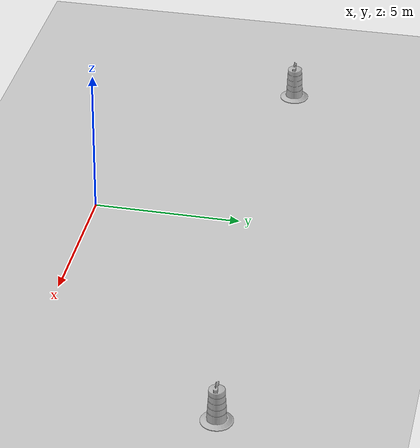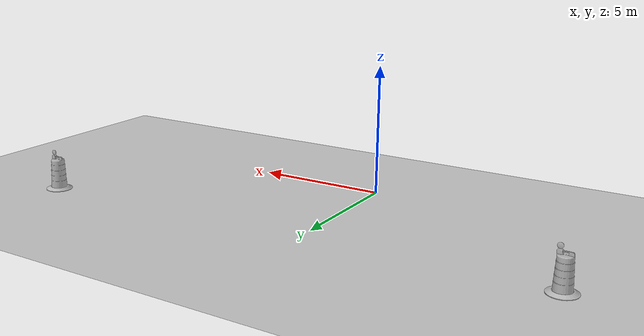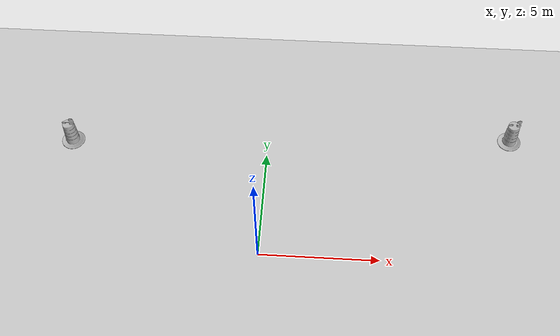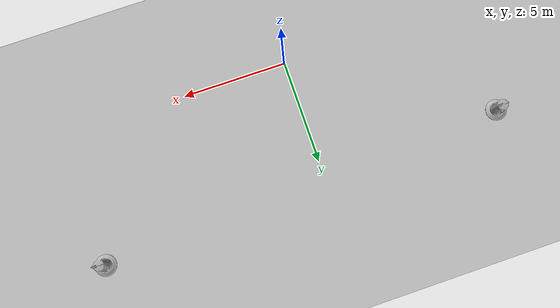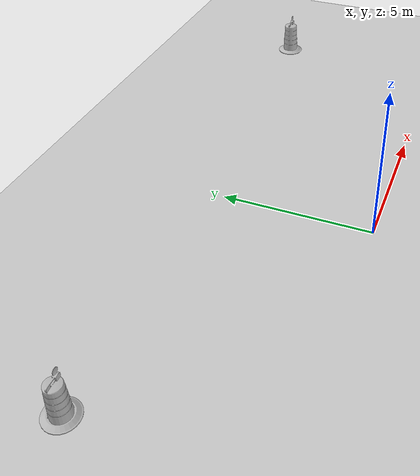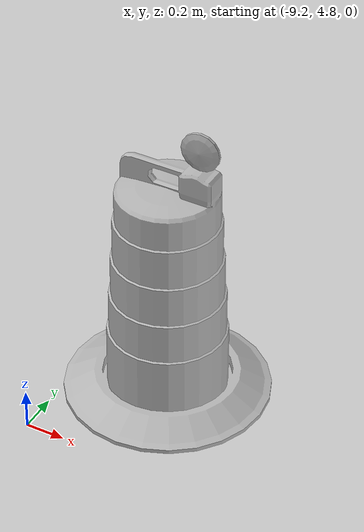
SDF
<sdf version='1.7'>
  <world name='default'>

    <light name='sun' type='directional'>
      <cast_shadows>1</cast_shadows>
      <pose>0 0 10 0 -0 0</pose>
      <diffuse>0.8 0.8 0.8 1</diffuse>
      <specular>0.2 0.2 0.2 1</specular>
      <direction>-0.5 0.1 -0.9</direction>
    </light>

    <physics type='ode'>
      <max_step_size>0.001</max_step_size>
      <real_time_factor>1</real_time_factor>
      <real_time_update_rate>1000</real_time_update_rate>
    </physics>

    <model name='ground_plane'>
      <static>true</static>
      <link name='link'>
        <collision name='collision'>
          <geometry>
            <plane>
              <normal>0 0 1</normal>
              <size>100 100</size>
            </plane>
          </geometry>
          <surface>
            <friction>
              <ode>
                <mu>1.0</mu>
                <mu2>1.0</mu2>
              </ode>
            </friction>
            <contact>
              <ode>
                <kp>1e+13</kp>
                <kd>1</kd>
              </ode>
            </contact>
          </surface>
        </collision>
        <visual name='visual'>
          <cast_shadows>0</cast_shadows>
          <geometry>
            <plane>
              <normal>0 0 1</normal>
              <size>100 100</size>
            </plane>
          </geometry>
          <material>
            <script>
              <uri>file://media/materials/scripts/gazebo.material</uri>
              <name>Gazebo/Grey</name>
            </script>
          </material>
        </visual>
      </link>
    </model>

    <model name='Construction Barrel'>
      <pose>-8.756237 5.39226 0 0 -0 0</pose>
      <link name='link'>
        <inertial><mass>10</mass></inertial>
        <collision name='collision'><geometry><mesh><uri>model://construction_barrel/meshes/construction_barrel.dae</uri></mesh></geometry></collision>
        <visual name='visual'><geometry><mesh><uri>model://construction_barrel/meshes/construction_barrel.dae</uri></mesh></geometry></visual>
      </link>
    </model>

    <model name='Construction Barrel_0'>
      <pose>10.80022 6.377178 0 0 -0 0</pose>
       <link name='link'>
        <inertial><mass>10</mass></inertial>
        <collision name='collision'><geometry><mesh><uri>model://construction_barrel/meshes/construction_barrel.dae</uri></mesh></geometry></collision>
        <visual name='visual'><geometry><mesh><uri>model://construction_barrel/meshes/construction_barrel.dae</uri></mesh></geometry></visual>
      </link>
    </model>

    </world>
</sdf>
